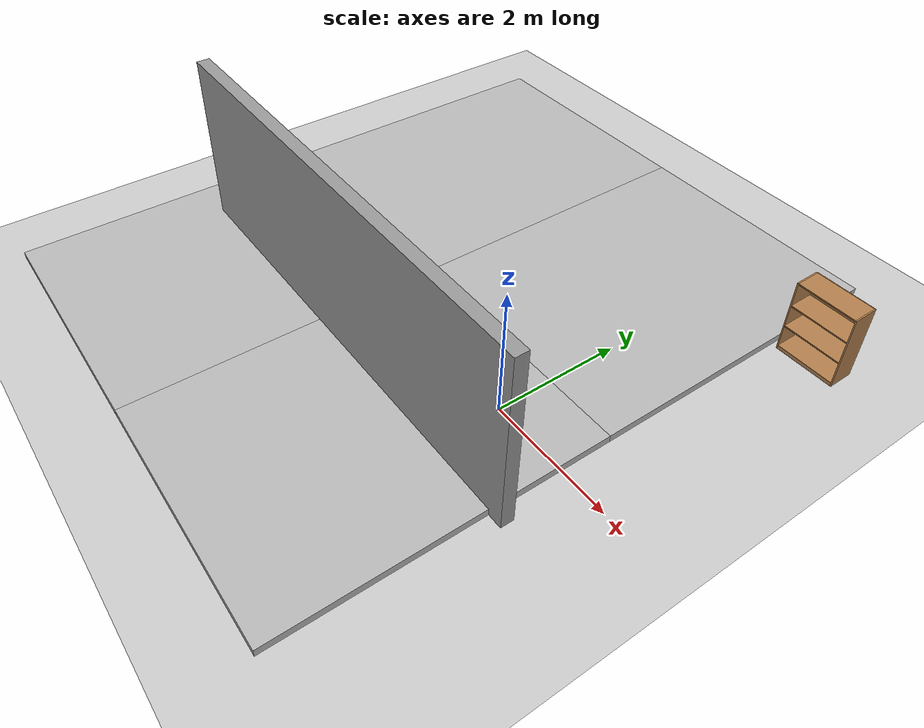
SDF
<sdf version="1.7">
 <world name="default">
  <light name="sun" type="directional">
   <pose>0 0 10 0 -0 0</pose>
   <diffuse>0.8 0.8 0.8 1</diffuse>
   <specular>0.2 0.2 0.2 1</specular>
   <attenuation>
    <range>1000</range>
    <constant>0.9</constant>
    <linear>0.01</linear>
    <quadratic>0.001</quadratic>
   </attenuation>
   <direction>-0.5 0.1 -0.9</direction>
   <spot><inner_angle>0</inner_angle><outer_angle>0</outer_angle><falloff>0</falloff></spot>
  </light>
  <model name="ground_plane">
   <static>1</static>
   <link name="link">
    <collision name="collision">
     <geometry><plane><normal>0 0 1</normal><size>100 100</size></plane></geometry>
     <surface>
      <contact><collide_bitmask>65535</collide_bitmask></contact>
      <friction><ode><mu>100</mu><mu2>50</mu2></ode></friction>
     </surface>
    </collision>
    <visual name="visual">
     <cast_shadows>0</cast_shadows>
     <geometry><plane><normal>0 0 1</normal><size>100 100</size></plane></geometry>
     <material>
      <script><uri>file://media/materials/scripts/gazebo.material</uri><name>Gazebo/Grey</name></script>
     </material>
    </visual>
   </link>
  </model>
  <gravity>0 0 -9.8</gravity>
  <magnetic_field>6e-06 2.3e-05 -4.2e-05</magnetic_field>
  <atmosphere type="adiabatic"/>
  <physics type="ode">
   <max_step_size>0.001</max_step_size>
   <real_time_factor>1</real_time_factor>
   <real_time_update_rate>1000</real_time_update_rate>
  </physics>
  <scene><ambient>0.4 0.4 0.4 1</ambient><background>0.7 0.7 0.7 1</background><shadows>1</shadows></scene>
  <spherical_coordinates>
   <surface_model>EARTH_WGS84</surface_model>
   <latitude_deg>0</latitude_deg>
   <longitude_deg>0</longitude_deg>
   <elevation>0</elevation>
   <heading_deg>0</heading_deg>
  </spherical_coordinates>
  <model name="grey_wall">
   <static>1</static>
   <link name="link">
    <pose>0 0 1.4 0 -0 0</pose>
    <collision name="collision"><geometry><box><size>7.5 0.2 2.8</size></box></geometry></collision>
    <visual name="visual">
     <cast_shadows>0</cast_shadows>
     <geometry><box><size>7.5 0.2 2.8</size></box></geometry>
     <material>
      <script>
       <uri>model://grey_wall/materials/scripts</uri>
       <uri>model://grey_wall/materials/textures</uri>
       <name>vrc/grey_wall</name>
      </script>
     </material>
    </visual>
   </link>
   <pose>-2.2911 -1.0266 0 0 -0 0</pose>
  </model>
  <model name="mud_box">
   <static>1</static>
   <link name="link">
    <collision name="collision"><geometry><box><size>8 10 0.2</size></box></geometry></collision>
    <visual name="visual_1">
     <pose>-2 2.5 0 0 -0 0</pose>
     <cast_shadows>0</cast_shadows>
     <geometry><box><size>4 5 0.2</size></box></geometry>
     <material>
      <script>
       <uri>model://mud_box/materials/scripts</uri>
       <uri>model://mud_box/materials/textures</uri>
       <name>vrc/mud</name>
      </script>
     </material>
    </visual>
    <visual name="visual_2">
     <pose>2 2.5 0 0 -0 0</pose>
     <cast_shadows>0</cast_shadows>
     <geometry><box><size>4 5 0.2</size></box></geometry>
     <material>
      <script>
       <uri>model://mud_box/materials/scripts</uri>
       <uri>model://mud_box/materials/textures</uri>
       <name>vrc/mud</name>
      </script>
     </material>
    </visual>
    <visual name="visual_3">
     <pose>2 -2.5 0 0 -0 0</pose>
     <cast_shadows>0</cast_shadows>
     <geometry><box><size>4 5 0.2</size></box></geometry>
     <material>
      <script>
       <uri>model://mud_box/materials/scripts</uri>
       <uri>model://mud_box/materials/textures</uri>
       <name>vrc/mud</name>
      </script>
     </material>
    </visual>
    <visual name="visual_4">
     <pose>-2 -2.5 0 0 -0 0</pose>
     <cast_shadows>0</cast_shadows>
     <geometry><box><size>4 5 0.2</size></box></geometry>
     <material>
      <script>
       <uri>model://mud_box/materials/scripts</uri>
       <uri>model://mud_box/materials/textures</uri>
       <name>vrc/mud</name>
      </script>
     </material>
    </visual>
   </link>
   <pose>-2.77433 0.816201 0 0 -0 0</pose>
  </model>
  <model name="bookshelf">
   <static>1</static>
   <link name="link">
    <inertial><mass>1</mass></inertial>
    <collision name="back">
     <pose>0 0.005 0.6 0 -0 0</pose>
     <geometry><box><size>0.9 0.01 1.2</size></box></geometry>
    </collision>
    <visual name="visual1">
     <pose>0 0.005 0.6 0 -0 0</pose>
     <geometry><box><size>0.9 0.01 1.2</size></box></geometry>
     <material>
      <script><uri>file://media/materials/scripts/gazebo.material</uri><name>Gazebo/Wood</name></script>
     </material>
    </visual>
    <collision name="left_side">
     <pose>0.45 -0.195 0.6 0 -0 0</pose>
     <geometry><box><size>0.02 0.4 1.2</size></box></geometry>
    </collision>
    <visual name="visual2">
     <pose>0.45 -0.195 0.6 0 -0 0</pose>
     <geometry><box><size>0.02 0.4 1.2</size></box></geometry>
     <material>
      <script><uri>file://media/materials/scripts/gazebo.material</uri><name>Gazebo/Wood</name></script>
     </material>
    </visual>
    <collision name="right_side">
     <pose>-0.45 -0.195 0.6 0 -0 0</pose>
     <geometry><box><size>0.02 0.4 1.2</size></box></geometry>
    </collision>
    <visual name="visual3">
     <pose>-0.45 -0.195 0.6 0 -0 0</pose>
     <geometry><box><size>0.02 0.4 1.2</size></box></geometry>
     <material>
      <script><uri>file://media/materials/scripts/gazebo.material</uri><name>Gazebo/Wood</name></script>
     </material>
    </visual>
    <collision name="bottom">
     <pose>0 -0.195 0.03 0 -0 0</pose>
     <geometry><box><size>0.88 0.4 0.06</size></box></geometry>
    </collision>
    <visual name="visual4">
     <pose>0 -0.195 0.03 0 -0 0</pose>
     <geometry><box><size>0.88 0.4 0.06</size></box></geometry>
     <material>
      <script><uri>file://media/materials/scripts/gazebo.material</uri><name>Gazebo/Wood</name></script>
     </material>
    </visual>
    <collision name="top">
     <pose>0 -0.195 1.19 0 -0 0</pose>
     <geometry><box><size>0.88 0.4 0.02</size></box></geometry>
    </collision>
    <visual name="visual5">
     <pose>0 -0.195 1.19 0 -0 0</pose>
     <geometry><box><size>0.88 0.4 0.02</size></box></geometry>
     <material>
      <script><uri>file://media/materials/scripts/gazebo.material</uri><name>Gazebo/Wood</name></script>
     </material>
    </visual>
    <collision name="low_shelf">
     <pose>0 -0.195 0.43 0 -0 0</pose>
     <geometry><box><size>0.88 0.4 0.02</size></box></geometry>
    </collision>
    <visual name="visual6">
     <pose>0 -0.195 0.43 0 -0 0</pose>
     <geometry><box><size>0.88 0.4 0.02</size></box></geometry>
     <material>
      <script><uri>file://media/materials/scripts/gazebo.material</uri><name>Gazebo/Wood</name></script>
     </material>
    </visual>
    <collision name="high_shelf">
     <pose>0 -0.195 0.8 0 -0 0</pose>
     <geometry><box><size>0.88 0.4 0.02</size></box></geometry>
    </collision>
    <visual name="visual7">
     <pose>0 -0.195 0.8 0 -0 0</pose>
     <geometry><box><size>0.88 0.4 0.02</size></box></geometry>
     <material>
      <script><uri>file://media/materials/scripts/gazebo.material</uri><name>Gazebo/Wood</name></script>
     </material>
    </visual>
   </link>
   <pose>1.77503 4.31736 0 0 -0 0</pose>
  </model>
 </world>
</sdf>
